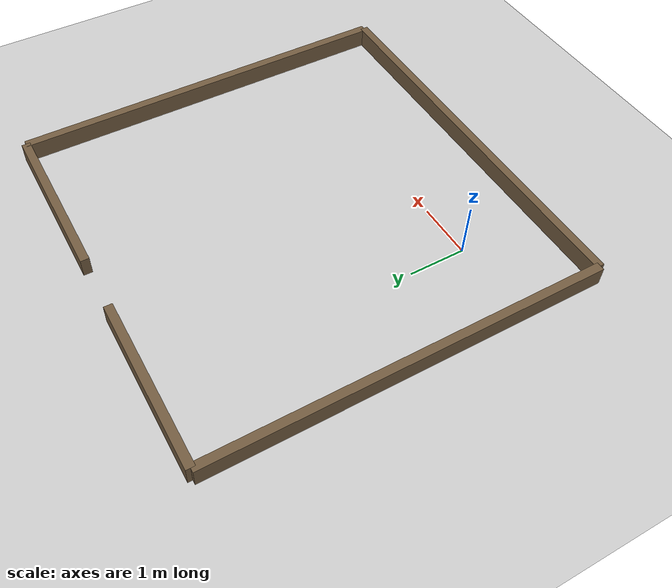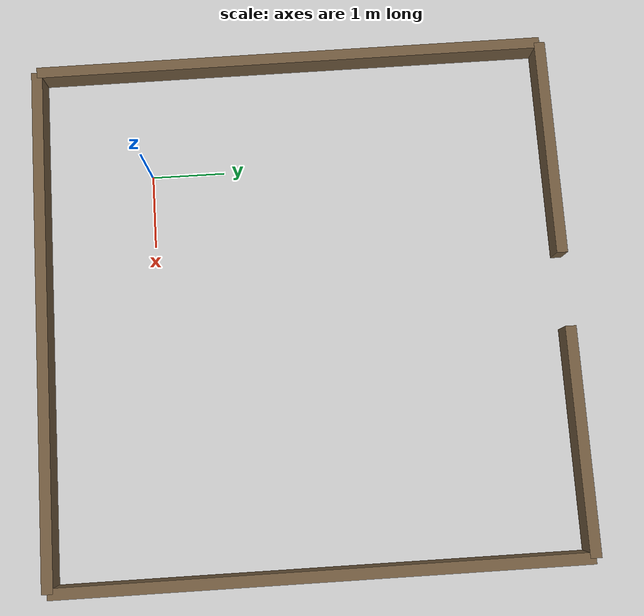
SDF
<?xml version="1.0" ?>
<sdf version="1.9">
    <world name="plane_world">
        <physics name="1ms" type="ignored">
            <max_step_size>0.001</max_step_size>
            <real_time_factor>1.0</real_time_factor>
        </physics>
        <plugin
            filename="gz-sim-physics-system"
            name="gz::sim::systems::Physics">
        </plugin>
        <plugin
            filename="gz-sim-user-commands-system"
            name="gz::sim::systems::UserCommands">
        </plugin>
        <plugin
            filename="gz-sim-scene-broadcaster-system"
            name="gz::sim::systems::SceneBroadcaster">
        </plugin>

        <light type="directional" name="sun">
            <cast_shadows>true</cast_shadows>
            <pose>0 0 10 0 0 0</pose>
            <diffuse>0.8 0.8 0.8 1</diffuse>
            <specular>0.2 0.2 0.2 1</specular>
            <attenuation>
                <range>1000</range>
                <constant>0.9</constant>
                <linear>0.01</linear>
                <quadratic>0.001</quadratic>
            </attenuation>
            <direction>-0.5 0.1 -0.9</direction>
        </light>

        <model name="ground_plane">
            <static>true</static>
            <link name="link">
                <collision name="collision">
                <geometry>
                    <plane>
                    <normal>0 0 1</normal>
                    </plane>
                </geometry>
                </collision>
                <visual name="visual">
                <geometry>
                    <plane>
                    <normal>0 0 1</normal>
                    <size>100 100</size>
                    </plane>
                </geometry>
                <material>
                    <ambient>0.8 0.8 0.8 1</ambient>
                    <diffuse>0.8 0.8 0.8 1</diffuse>
                    <specular>0.8 0.8 0.8 1</specular>
                </material>
                </visual>
            </link>
        </model>

        <model name="sandbox_walls">
            <static>true</static>

            <!-- north wall with centered opening -->
            <link name="north_wall_left">
                <pose>0.0 5.5 0.175 0 0 0</pose>
                <collision name="collision">
                    <geometry>
                        <box>
                            <size>3.0 0.15 0.35</size>
                        </box>
                    </geometry>
                </collision>
                <visual name="visual">
                    <geometry>
                        <box>
                            <size>3.0 0.15 0.35</size>
                        </box>
                    </geometry>
                    <material>
                        <ambient>0.45 0.36 0.25 1</ambient>
                        <diffuse>0.45 0.36 0.25 1</diffuse>
                    </material>
                </visual>
            </link>

            <link name="north_wall_right">
                <pose>4.0 5.5 0.175 0 0 0</pose>
                <collision name="collision">
                    <geometry>
                        <box>
                            <size>3.0 0.15 0.35</size>
                        </box>
                    </geometry>
                </collision>
                <visual name="visual">
                    <geometry>
                        <box>
                            <size>3.0 0.15 0.35</size>
                        </box>
                    </geometry>
                    <material>
                        <ambient>0.45 0.36 0.25 1</ambient>
                        <diffuse>0.45 0.36 0.25 1</diffuse>
                    </material>
                </visual>
            </link>

            <!-- south wall -->
            <link name="south_wall_left">
                <pose>2.0 -1.5 0.175 0 0 0</pose>
                <collision name="collision">
                    <geometry>
                        <box>
                            <size>7.0 0.15 0.35</size>
                        </box>
                    </geometry>
                </collision>
                <visual name="visual">
                    <geometry>
                        <box>
                            <size>7.0 0.15 0.35</size>
                        </box>
                    </geometry>
                    <material>
                        <ambient>0.45 0.36 0.25 1</ambient>
                        <diffuse>0.45 0.36 0.25 1</diffuse>
                    </material>
                </visual>
            </link>

            <!-- west wall -->
            <link name="west_wall">
                <pose>-1.5 2.0 0.175 0 0 0</pose>
                <collision name="collision">
                    <geometry>
                        <box>
                            <size>0.15 7.0 0.35</size>
                        </box>
                    </geometry>
                </collision>
                <visual name="visual">
                    <geometry>
                        <box>
                            <size>0.15 7.0 0.35</size>
                        </box>
                    </geometry>
                    <material>
                        <ambient>0.45 0.36 0.25 1</ambient>
                        <diffuse>0.45 0.36 0.25 1</diffuse>
                    </material>
                </visual>
            </link>

            <!-- east wall -->
            <link name="east_wall">
                <pose>5.5 2.0 0.175 0 0 0</pose>
                <collision name="collision">
                    <geometry>
                        <box>
                            <size>0.15 7.0 0.35</size>
                        </box>
                    </geometry>
                </collision>
                <visual name="visual">
                    <geometry>
                        <box>
                            <size>0.15 7.0 0.35</size>
                        </box>
                    </geometry>
                    <material>
                        <ambient>0.45 0.36 0.25 1</ambient>
                        <diffuse>0.45 0.36 0.25 1</diffuse>
                    </material>
                </visual>
            </link>
        </model>
    </world>
</sdf>
